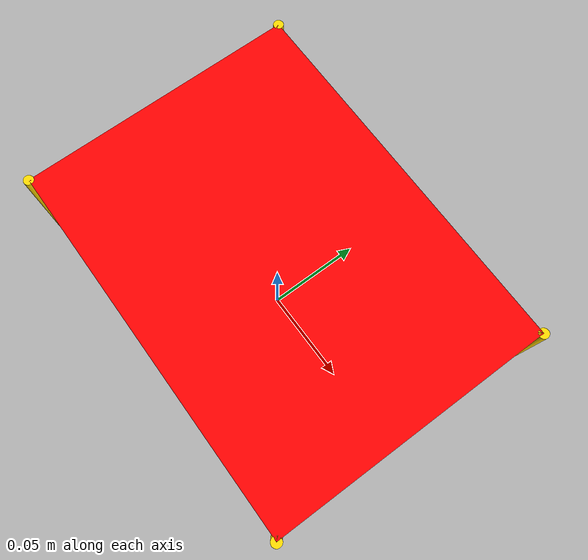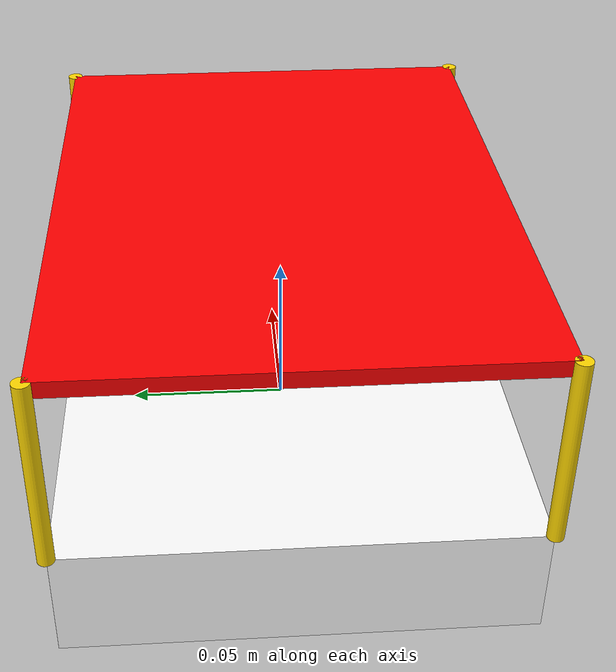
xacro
<?xml version="1.0"?>
<robot name="new_fyp_kal_robot" xmlns:xacro="http://www.ros.org/wiki/xacro">

  <!-- Define robot constants -->
  <xacro:property name="base_width" value="0.14"/>
  <xacro:property name="base_length" value="0.19"/>
  <xacro:property name="base_height" value="0.035"/>
  <xacro:property name="top_layer_height" value="0.005"/>
  <xacro:property name="standoff_radius" value="0.0025"/>
  <xacro:property name="standoff_height" value="0.06"/>
  <xacro:property name="wheel_radius" value="0.06"/>

  <!-- Define intertial property macros  -->
  <xacro:macro name="box_inertia" params="m w h d">
    <inertial>
      <origin xyz="0 0 0" rpy="${pi/2} 0 ${pi/2}"/>
      <mass value="${m}"/>
      <inertia ixx="${(m/12) * (h*h + d*d)}" ixy="0.0" ixz="0.0" iyy="${(m/12) * (w*w + d*d)}" iyz="0.0" izz="${(m/12) * (w*w + h*h)}"/>
    </inertial>
  </xacro:macro>

  <xacro:macro name="cylinder_inertia" params="m r h">
    <inertial>
      <origin xyz="0 0 0" rpy="${pi/2} 0 0" />
      <mass value="${m}"/>
      <inertia ixx="${(m/12) * (3*r*r + h*h)}" ixy = "0" ixz = "0" iyy="${(m/12) * (3*r*r + h*h)}" iyz = "0" izz="${(m/2) * (r*r)}"/>
    </inertial>
  </xacro:macro>

  <xacro:macro name="sphere_inertia" params="m r">
    <inertial>
      <mass value="${m}"/>
      <inertia ixx="${(2/5) * m * (r*r)}" ixy="0.0" ixz="0.0" iyy="${(2/5) * m * (r*r)}" iyz="0.0" izz="${(2/5) * m * (r*r)}"/>
    </inertial>
  </xacro:macro>

  <!-- Robot Base -->
  <link name="base_link">
    <visual>
      <geometry>
        <box size="${base_length} ${base_width} ${base_height}"/>
      </geometry>
      <material name="White">
        <color rgba="1.0 1.0 1.0 1.0"/>
      </material>
    </visual>
    <collision>
      <geometry>
        <box size="${base_length} ${base_width} ${base_height}"/>
      </geometry>
    </collision>
    <xacro:box_inertia m="5" w="${base_width}" d="${base_length}" h="${base_height}"/>
  </link>

  <!-- Top Layer -->
  <link name="top_layer">
    <visual>
      <geometry>
        <box size="${base_length} ${base_width} ${top_layer_height}"/>
      </geometry>
      <material name="Red">
        <color rgba="1.0 0.0 0.0 1.0"/>
      </material>
    </visual>
    <collision>
      <geometry>
        <box size="${base_length} ${base_width} ${top_layer_height}"/>
      </geometry>
    </collision>
  <xacro:box_inertia m="1" w="${base_width}" d="${base_length}" h="${base_height}"/>
  </link>

  <!-- Standoffs -->
  <xacro:macro name="standoff" params="prefix x y">
    <link name="${prefix}_standoff">
      <visual>
        <origin xyz="0 0 0" rpy="0 0 0"/>
        <geometry>
          <cylinder radius="${standoff_radius}" length="${standoff_height}"/>
        </geometry>
        <material name="Gold">
          <color rgba="1 0.843 0 1.0"/>
        </material>
      </visual>
      <collision>
        <geometry>
          <cylinder radius="${standoff_radius}" length="${standoff_height}"/>
        </geometry>
      </collision>
      <xacro:cylinder_inertia m="0.005" r="${standoff_radius}" h="${standoff_height}"/>
    </link>
    <joint name="${prefix}_standoff_joint" type="fixed">
      <parent link="base_link"/>
      <child link="${prefix}_standoff"/>
      <origin xyz="${x} ${y} ${(base_height/2 + standoff_height/2)}" rpy="0 0 0"/>
    </joint>
  </xacro:macro>

  <!--Instances of standoffs-->
  <xacro:standoff prefix="front_left" x="${base_length/2}" y="${base_width/2}"/>
  <xacro:standoff prefix="front_right" x="${base_length/2}" y="${-base_width/2}"/>
  <xacro:standoff prefix="rear_left" x="${-base_length/2}" y="${base_width/2}"/>
  <xacro:standoff prefix="rear_right" x="${-base_length/2}" y="${-base_width/2}"/>

  <!-- Top Layer Joint -->
  <joint name="top_layer_joint" type="fixed">
    <parent link="base_link"/>
    <child link="top_layer"/>
    <origin xyz="0 0 ${(base_height + standoff_height - 0.02)}" rpy="0 0 0"/>
  </joint>

  <!-- Robot Footprint -->
  <link name="base_footprint"/>

  <joint name="base_joint" type="fixed">
    <parent link="base_link"/>
    <child link="base_footprint"/>
    <origin xyz="0.0 0.0 ${-wheel_radius}" rpy="0 0 0"/>
  </joint>

</robot>
